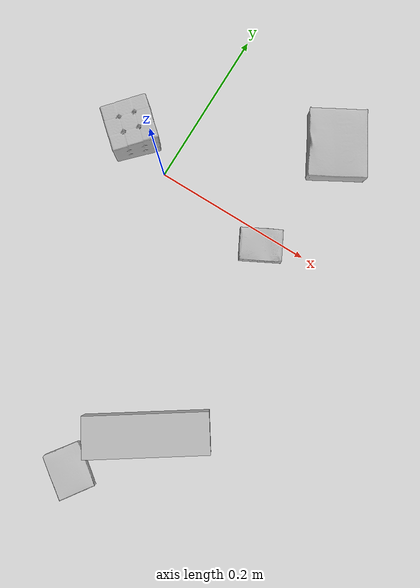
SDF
<sdf version="1.4">
  <world name="default">
    <light name="light1" type="point">
      <pose>0 0 1 0 0 0</pose>
      <diffuse>3 3 3 1</diffuse>
      <specular>3 3 3 1</specular>
    </light>
    <light name="light2" type="point">
      <pose>0 0.5 2 0 0 0</pose>
      <diffuse>1 1 1 1</diffuse>
      <specular>1 1 1 1</specular>
    </light>
    <light name="light3" type="point">
      <pose>0 0.5 2 0 0 0</pose>
      <diffuse>3 3 3 1</diffuse>
      <specular>3 3 3 1</specular>
    </light>
    <scene>
      <ambient>0.7 0.7 0.7</ambient>
    </scene>
    <model name="box1">
      <link name="link_box1">
        <collision name="default">
          <geometry>
            <mesh>
              <uri>model://jenga/collision_meshes/collision.obj</uri>
              <scale>1.0 1.0 1.0</scale>
            </mesh>
          </geometry>
          <surface>
            <friction>
              <ode>
                <mu>0.5</mu>
                <mu2>0.5</mu2>
              </ode>
            </friction>
          <contact>
        <ode>
            <max_vel>0</max_vel>
            <min_depth>0.0001</min_depth>
            <kp>1e8</kp>
        </ode>
    </contact></surface>
        </collision>
        <visual name="default">
          <geometry>
            <mesh>
              <uri>model://jenga/visual_meshes/visual.dae</uri>
              <scale>1.0 1.0 1.0</scale>
            </mesh>
          </geometry>
        </visual>
        <inertial>
          <mass>0.2062758058309555</mass>
          <pose>-2.502855807051674e-07 -0.00010250010382151231 -4.092339804628864e-05 0.0 -7.342154049184251e-07 0.0</pose>
          <inertia>
            <ixx>5.7081514e-05</ixx>
            <iyy>0.0003867828</iyy>
            <izz>0.00041292355</izz>
            <ixy>0</ixy>
            <ixz>0</ixz>
            <iyz>0</iyz>
          </inertia>
        </inertial>
      </link>
      <pose>0.150508314371109 -0.2784695029258728 0.014999997802078724 6.12210508486663e-09 3.2651268001099115e-10 -2.5538801410792686</pose>
    </model>
    <model name="box2">
      <link name="link_box2">
        <collision name="default">
          <geometry>
            <mesh>
              <uri>model://cracker_box/collision_meshes/collision.obj</uri>
              <scale>0.25 0.25 0.25</scale>
            </mesh>
          </geometry>
          <surface>
            <friction>
              <ode>
                <mu>0.5</mu>
                <mu2>0.5</mu2>
              </ode>
            </friction>
          <contact>
        <ode>
            <max_vel>0</max_vel>
            <min_depth>0.0001</min_depth>
            <kp>1e8</kp>
        </ode>
    </contact></surface>
        </collision>
        <visual name="default">
          <geometry>
            <mesh>
              <uri>model://cracker_box/visual_meshes/visual.dae</uri>
              <scale>0.25 0.25 0.25</scale>
            </mesh>
          </geometry>
        </visual>
        <inertial>
          <mass>0.023937078192830086</mass>
          <pose>0.00023660386796109378 6.358562677633017e-05 -0.00042573839891701937 -0.00031620780222672953 -0.011106490531565828 0.0025467947702904154</pose>
          <inertia>
            <ixx>3.8053279e-06</ixx>
            <iyy>6.2833433e-06</iyy>
            <izz>8.966907e-06</izz>
            <ixy>0</ixy>
            <ixz>0</ixz>
            <iyz>0</iyz>
          </inertia>
        </inertial>
      </link>
      <pose>0.1486416906118393 -0.014291863888502121 0.009120451286435127 -0.01178810678392628 -0.007367170316059821 -2.6593568221963118</pose>
    </model>
    <model name="box3">
      <link name="link_box3">
        <collision name="default">
          <geometry>
            <mesh>
              <uri>model://pudding_box/collision_meshes/collision.obj</uri>
              <scale>0.5 0.5 0.5</scale>
            </mesh>
          </geometry>
          <surface>
            <friction>
              <ode>
                <mu>0.5</mu>
                <mu2>0.5</mu2>
              </ode>
            </friction>
          <contact>
        <ode>
            <max_vel>0</max_vel>
            <min_depth>0.0001</min_depth>
            <kp>1e8</kp>
        </ode>
    </contact></surface>
        </collision>
        <visual name="default">
          <geometry>
            <mesh>
              <uri>model://pudding_box/visual_meshes/visual.dae</uri>
              <scale>0.5 0.5 0.5</scale>
            </mesh>
          </geometry>
        </visual>
        <inertial>
          <mass>0.06577561050653458</mass>
          <pose>0.0002447410661261529 0.00040339428232982755 -0.00025944135268218815 0.005213102261421096 -0.006603797796883786 0.020079827023418362</pose>
          <inertia>
            <ixx>1.8588986e-05</ixx>
            <iyy>1.2506803e-05</iyy>
            <izz>2.7451497e-05</izz>
            <ixy>0</ixy>
            <ixz>0</ixz>
            <iyz>0</iyz>
          </inertia>
        </inertial>
      </link>
      <pose>0.09518828243017197 -0.36179882287979126 0.009862903505563736 0.02235036782122087 -0.011390402798025409 -2.19502269225108</pose>
    </model>
    <model name="box4">
      <link name="link_box4">
        <collision name="default">
          <geometry>
            <mesh>
              <uri>model://gelatin_box/collision_meshes/collision.obj</uri>
              <scale>1.0 1.0 1.0</scale>
            </mesh>
          </geometry>
          <surface>
            <friction>
              <ode>
                <mu>0.5</mu>
                <mu2>0.5</mu2>
              </ode>
            </friction>
          <contact>
        <ode>
            <max_vel>0</max_vel>
            <min_depth>0.0001</min_depth>
            <kp>1e8</kp>
        </ode>
    </contact></surface>
        </collision>
        <visual name="default">
          <geometry>
            <mesh>
              <uri>model://gelatin_box/visual_meshes/visual.dae</uri>
              <scale>1.0 1.0 1.0</scale>
            </mesh>
          </geometry>
        </visual>
        <inertial>
          <mass>0.21051041781902313</mass>
          <pose>0.000431961816502735 0.00011156871914863586 -0.0003640321083366871 -0.0010503719683328595 -0.0047558182256164224 0.016440557608480007</pose>
          <inertia>
            <ixx>0.0001486032</ixx>
            <iyy>0.00010614647</iyy>
            <izz>0.00022620716</izz>
            <ixy>0</ixy>
            <ixz>0</ixz>
            <iyz>0</iyz>
          </inertia>
        </inertial>
      </link>
      <pose>0.1645662933588028 0.14125140011310577 0.015168316662311554 0.0055973894082832895 -0.007304463946829163 -2.6397025744670977</pose>
    </model>
    <model name="box5">
      <link name="link_box5">
        <collision name="default">
          <geometry>
            <mesh>
              <uri>model://rubiks_cube/collision_meshes/collision.obj</uri>
              <scale>1.0 1.0 1.0</scale>
            </mesh>
          </geometry>
          <surface>
            <friction>
              <ode>
                <mu>0.5</mu>
                <mu2>0.5</mu2>
              </ode>
            </friction>
          <contact>
        <ode>
            <max_vel>0</max_vel>
            <min_depth>0.0001</min_depth>
            <kp>1e8</kp>
        </ode>
    </contact></surface>
        </collision>
        <visual name="default">
          <geometry>
            <mesh>
              <uri>model://rubiks_cube/visual_meshes/visual.dae</uri>
              <scale>1.0 1.0 1.0</scale>
            </mesh>
          </geometry>
        </visual>
        <inertial>
          <mass>0.13810032606124878</mass>
          <pose>2.6721041649580002e-05 5.256967051536776e-05 -7.264316082000732e-06 -0.05467240103362065 -0.09813937396878175 -0.03445717948301123</pose>
          <inertia>
            <ixx>7.63097e-05</ixx>
            <iyy>7.595384e-05</iyy>
            <izz>7.694205e-05</izz>
            <ixy>0</ixy>
            <ixz>0</ixz>
            <iyz>0</iyz>
          </inertia>
        </inertial>
      </link>
      <pose>-0.05917932093143463 0.02313910610973835 0.028678975999355316 -3.5089147948391374e-06 -9.98663352222395e-07 0.845534808672728</pose>
    </model>
  <physics type="ode">
      <max_contacts>50</max_contacts>
      <ode>
        <solver>
          <type>quick</type>
          <iters>75</iters>
        </solver>
        <constraints>
          <contact_max_correcting_vel>0</contact_max_correcting_vel>
          <contact_surface_layer>0</contact_surface_layer>
        </constraints>
      </ode>
    </physics></world>
</sdf>
